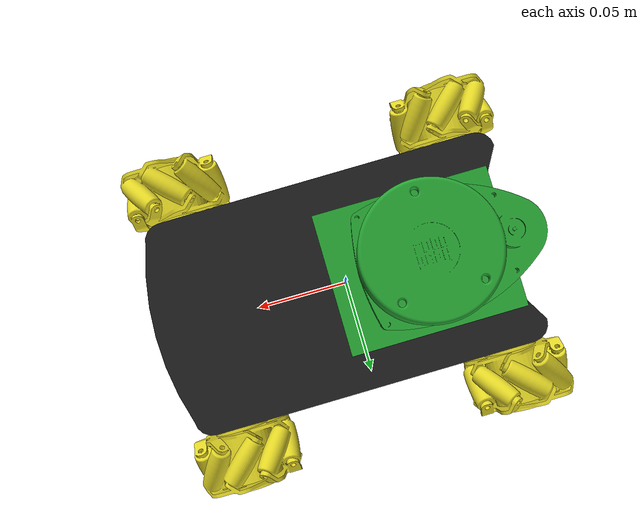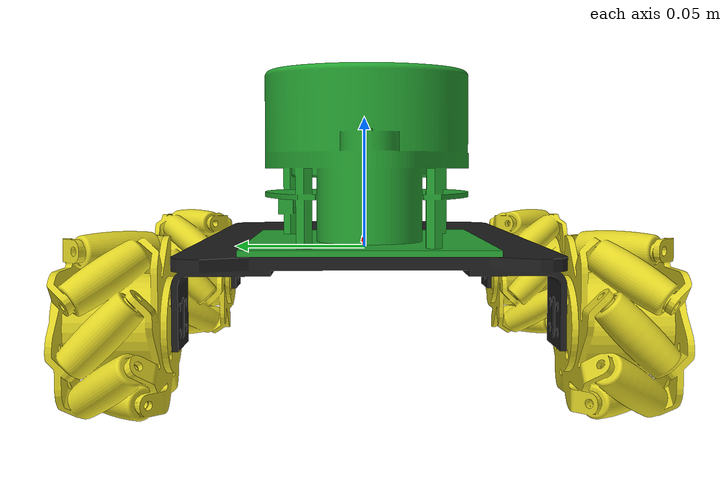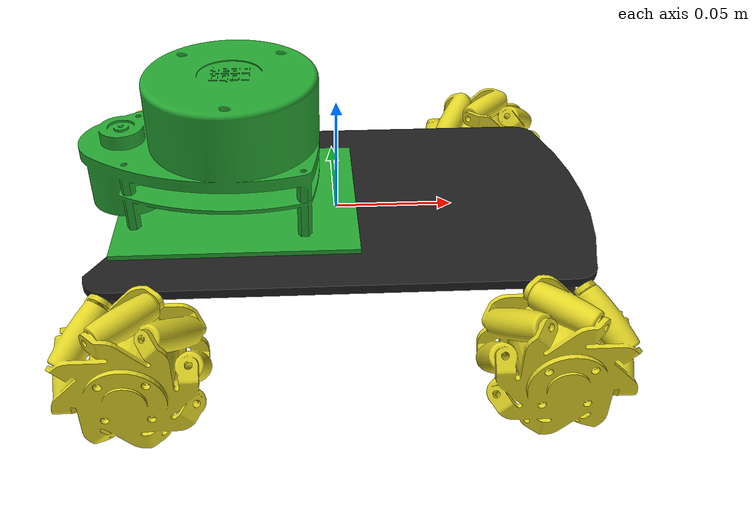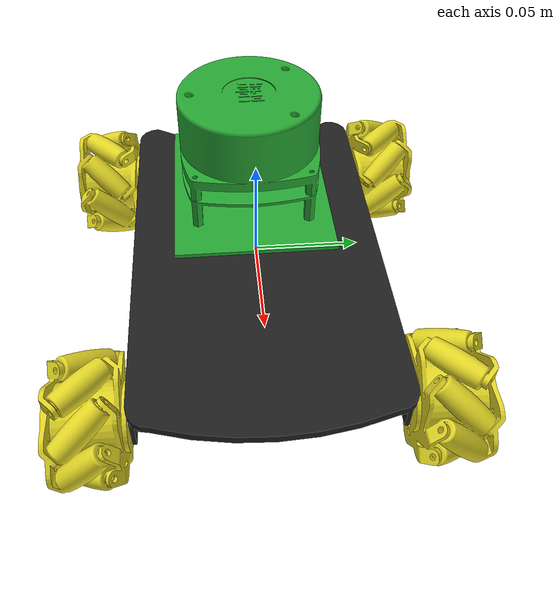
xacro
<?xml version="1.0" encoding="utf-8"?>
<robot name="omni_car" xmlns:xacro="http://www.ros.org/wiki/xacro">

  <xacro:arg name="prefix" default=""/>

  <xacro:include filename="$(find omni_car)/urdf/omni_car_description.urdf.xacro"/>
  <xacro:include filename="$(find omni_car)/gazebo/omni_car.gazebo.xacro"/>
  <xacro:include filename="$(find omni_car)/ros2_control/omni_car.ros2_control.xacro"/>

  <xacro:omni_car prefix="$(arg prefix)"/>
  <xacro:omni_car_ros2_control name="OmniCar" prefix="$(arg prefix)"/>
  <xacro:omni_car_gazebo prefix="$(arg prefix)"/>

</robot>

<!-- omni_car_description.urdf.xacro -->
<robot name="omni_car" xmlns:xacro="http://www.ros.org/wiki/xacro">

  <xacro:macro name="omni_car" params="prefix">

  <xacro:include filename="$(find omni_car)/urdf/omni_car.materials.xacro"/>
  <xacro:include filename="$(find omni_car)/urdf/wheel.urdf.xacro"/>
  <xacro:include filename="$(find omni_car)/urdf/imu.urdf.xacro"/>
  <xacro:include filename="$(find omni_car)/urdf/lidar.urdf.xacro"/>

  <link name="${prefix}base_link"/>

  <link name="${prefix}frame">
    <inertial>
      <origin xyz="0 0 0" rpy="0 0 0" />
      <mass value="200.0" />
      <inertia ixx="0.02" ixy="0.0" ixz="0.0" iyy="0.02" iyz="0.0" izz="0.02" />
    </inertial>
    <visual>
      <origin xyz="0 0 0" rpy="0 0 0" />
      <geometry>
        <mesh filename="file://$(find omni_car)/meshes/base_link.dae" />
      </geometry>
      <material name="black"/>
    </visual>
    <collision>
      <origin xyz="0 0 0" rpy="0 0 0" />
      <geometry>
        <box size="0.23 0.1 0.01"/>
      </geometry>
    </collision>
  </link>

  <joint name="${prefix}base_to_frame" type="fixed">
    <parent link="${prefix}base_link"/>
    <child link="${prefix}frame"/>
    <origin xyz="0 0 0" rpy="0 0 0"/>
  </joint>

  <xacro:property name="wheel_x_offset" value="0.08"/>
  <xacro:property name="wheel_y_offset" value="0.078"/>
  <xacro:property name="wheel_z_offset" value="-0.018"/>
  <xacro:wheel wheel_site="front_left" wheel_x_offset="${wheel_x_offset}" wheel_y_offset="${wheel_y_offset}" wheel_z_offset="${wheel_z_offset}" prefix="${prefix}"/>
  <xacro:wheel wheel_site="front_right" wheel_x_offset="${wheel_x_offset}" wheel_y_offset="${-wheel_y_offset}" wheel_z_offset="${wheel_z_offset}" prefix="${prefix}"/>
  <xacro:wheel wheel_site="rear_left" wheel_x_offset="${-wheel_x_offset}" wheel_y_offset="${wheel_y_offset}" wheel_z_offset="${wheel_z_offset}" prefix="${prefix}"/>
  <xacro:wheel wheel_site="rear_right" wheel_x_offset="${-wheel_x_offset}" wheel_y_offset="${-wheel_y_offset}" wheel_z_offset="${wheel_z_offset}" prefix="${prefix}"/>

  <xacro:imu name="imu" prefix="${prefix}">
    <origin xyz="0 0 -0.001" rpy="0 0 0"/>
  </xacro:imu>

  <xacro:lidar name="lidar" prefix="${prefix}">
    <origin xyz="-0.042 0 0.005" rpy="0 0 0"/>
  </xacro:lidar>

  </xacro:macro>
</robot>

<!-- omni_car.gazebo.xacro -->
<robot xmlns:xacro="http://ros.org/wiki/xacro">

  <xacro:macro name="omni_car_gazebo" params="prefix">

    <gazebo>
      <!-- ros2_control plugin -->
      <plugin filename="gz_ros2_control-system" name="gz_ros2_control::GazeboSimROS2ControlPlugin">
        <parameters>$(find omni_car)/config/omni_car_controllers.yaml</parameters>
      </plugin>

      <!-- Sensors plugins -->
      <plugin filename="gz-sim-sensors-system" name="gz::sim::systems::Sensors">
        <render_engine>ogre2</render_engine>
      </plugin>
      <plugin filename="gz-sim-imu-system" name="gz::sim::systems::Imu"/>

      <!-- Force plugin (solution to the problem mecanum wheels) -->
      <plugin filename="force_plugin" name="force_plugin::ForcePlugin">
        <bodyName>${prefix}base_link</bodyName>
        <cmdTopic>omni_drive_controller/cmd_vel_out</cmdTopic>
      </plugin>

      <!-- /usr/share/gz/gz-sim8/worlds/mecanum_drive.sdf -->
    </gazebo>

    <gazebo reference="${prefix}base_link">
      <material>Gazebo/Orange</material>
    </gazebo>

    <!-- Properties for wheels -->
    <xacro:property name="wheel_mu1" value="0.0"/>
    <xacro:property name="wheel_mu2" value="0.0"/>
    <xacro:property name="wheel_material" value="Gazebo/Yellow"/>

    <xacro:macro name="wheel_properties" params="wheel_name">
      <gazebo reference="${prefix}${wheel_name}">
        <mu1>${wheel_mu1}</mu1>
        <mu2>${wheel_mu2}</mu2>
        <material>${wheel_material}</material>
      </gazebo>
    </xacro:macro>

    <xacro:wheel_properties wheel_name="wheel_front_left"/>
    <xacro:wheel_properties wheel_name="wheel_front_right"/>
    <xacro:wheel_properties wheel_name="wheel_rear_left"/>
    <xacro:wheel_properties wheel_name="wheel_rear_right"/>

    <!-- _____Sensors_____ -->
    <!-- Lidar -->
    <gazebo reference="${prefix}lidar_beam_link" >
      <sensor name="lidar" type="gpu_lidar">
        <gz_frame_id>${prefix}lidar_beam_link</gz_frame_id>
        <topic>scan</topic>
        <update_rate>30</update_rate>
        <lidar>
          <scan>
            <horizontal>
              <samples>1000</samples>
              <resolution>1</resolution>
              <min_angle>-3.1414</min_angle>
              <max_angle>3.1414</max_angle>
            </horizontal>
            <vertical>
              <samples>1</samples>
              <resolution>0.1</resolution>
              <min_angle>0.0</min_angle>
              <max_angle>0.0</max_angle>
            </vertical>
          </scan>
          <range>
            <min>0.1</min>
            <max>10.0</max>
            <resolution>0.01</resolution>
          </range>
          <frame_id>${prefix}lidar_beam_link</frame_id>
        </lidar>
        <alwaysOn>ture</alwaysOn>
        <visualize>true</visualize>
      </sensor>
    </gazebo>

    <!-- IMU -->
    <gazebo reference="${prefix}imu_link" >
      <sensor name="imu" type="imu">
        <always_on>1</always_on>
        <update_rate>100</update_rate>
        <visualize>true</visualize>
        <topic>imu</topic>
        <enable_metrics>true</enable_metrics>
      </sensor>
    </gazebo>

    <!-- RGB camera -->
    <gazebo reference="${prefix}kinect_rgb_frame" >
      <sensor name="camera" type="camera">
        <camera>
          <horizontal_fov>1.047</horizontal_fov>
          <image>
            <width>320</width>
            <height>240</height>
          </image>
          <clip>
            <near>0.1</near>
            <far>100</far>
          </clip>
        </camera>
        <always_on>1</always_on>
        <update_rate>30</update_rate>
        <visualize>true</visualize>
        <topic>camera</topic>
      </sensor>
    </gazebo>

    <!-- depth camera -->
    <gazebo reference="${prefix}kinect_depth_frame" >
      <sensor name="depth_camera1" type="depth_camera">
        <update_rate>10</update_rate>
        <topic>depth_camera</topic>
        <camera>
          <horizontal_fov>1.05</horizontal_fov>
          <image>
            <width>256</width>
            <height>256</height>
            <format>R_FLOAT32</format>
          </image>
          <clip>
            <near>0.1</near>
            <far>10.0</far>
          </clip>
        </camera>
      </sensor>
    </gazebo>

  </xacro:macro>
</robot>

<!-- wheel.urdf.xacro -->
<robot xmlns:xacro="http://wiki.ros.org/xacro">
  <xacro:macro name="wheel" params="wheel_site wheel_x_offset wheel_y_offset wheel_z_offset prefix">
    <link name="${prefix}wheel_${wheel_site}">
      <inertial>
        <origin xyz="0 0 0" rpy="0 0 0" />
        <mass value="0.3" />
        <inertia ixx="0.02" ixy="0.0" ixz="0.0" iyy="0.02" iyz="0.0" izz="0.02" />
      </inertial>
      <visual>
        <origin xyz="0 0 0" rpy="${-pi/2} 0 0" />
        <geometry>
          <mesh filename="file://$(find omni_car)/meshes/wheel_${wheel_site}.dae" />
        </geometry>
        <material name="yellow"/>
      </visual>
      <collision>
        <origin xyz="0 0 0" rpy="0 0 0" />
        <geometry>
          <cylinder radius="0.03" length="0.02"/>
        </geometry>
      </collision>
    </link>

    <joint name="${prefix}wheel_${wheel_site}_joint" type="continuous">
      <parent link="${prefix}frame" />
      <child link="${prefix}wheel_${wheel_site}" />
      <axis xyz="0 0 1" />
      <origin xyz="${wheel_x_offset} ${wheel_y_offset} ${wheel_z_offset}" rpy="${-pi/2} 0 0"/>
      <limit velocity="15.0" effort="30"/>
    </joint>

    <transmission name="${prefix}${wheel_site}_trans">
      <type>transmission_interface/SimpleTransmission</type>
      <joint name="${prefix}wheel_${wheel_site}_joint">
        <hardwareInterface>VelocityJointInterface</hardwareInterface>
      </joint>
      <actuator name="${prefix}${wheel_site}_motor">
        <mechanicalReduction>1</mechanicalReduction>
      </actuator>
    </transmission>

  </xacro:macro>
</robot>

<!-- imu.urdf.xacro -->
<robot xmlns:xacro="http://wiki.ros.org/xacro">
  <xacro:property name="imu_size" value="0.002" />
  <xacro:macro name="imu" params="name prefix *origin">
    <link name="${prefix}${name}_link">
      <visual>
        <origin xyz="0 0 0" rpy="0 0 0" />
        <geometry>
          <box size="${imu_size} ${imu_size} ${imu_size}"/>
        </geometry>
        <material name="blue" />
      </visual>
    </link>
    <joint name="${prefix}${name}_joint" type="fixed">
      <xacro:insert_block name="origin" />
      <parent link="${prefix}frame"/>
      <child link="${prefix}${name}_link"/>
    </joint>
  </xacro:macro>
</robot>

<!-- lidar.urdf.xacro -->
<robot xmlns:xacro="http://wiki.ros.org/xacro">
  <xacro:property name="lidar_base_size_x" value="0.1" />
  <xacro:property name="lidar_base_size_y" value="0.08" />
  <xacro:property name="lidar_base_size_z" value="0.002" />

  <xacro:property name="beam_z" value="0.045" />
  <xacro:macro name="lidar" params="name prefix *origin">
    <link name="${prefix}${name}_base_link">
      <visual>
        <origin xyz="0 0 0" rpy="0 0 0" />
        <geometry>
          <box size="${lidar_base_size_x} ${lidar_base_size_y} ${lidar_base_size_z}"/>
        </geometry>
        <material name="green" />
      </visual>
    </link>

    <link name="${prefix}${name}_main_link">
      <visual>
        <origin xyz="0 0 0" rpy="0 0 0" />
        <geometry>
          <mesh filename="file://$(find omni_car)/meshes/rplidar.stl"/>
        </geometry>
        <material name="green"/>
      </visual>
    </link>

    <link name="${prefix}${name}_beam_link"/>

    <joint name="${prefix}${name}_base_joint" type="fixed">
      <xacro:insert_block name="origin" />
      <parent link="${prefix}frame"/>
      <child link="${prefix}${name}_base_link"/>
    </joint>

    <joint name="${prefix}${name}_main_joint" type="fixed">
      <origin xyz="0 0 ${lidar_base_size_z/2}" rpy="0 0 0" />
      <parent link="${prefix}${name}_base_link"/>
      <child link="${prefix}${name}_main_link"/>
    </joint>

    <joint name="${prefix}${name}_beam_joint" type="fixed">
      <origin xyz="0 0 ${beam_z}" rpy="0 0 0" />
      <parent link="${prefix}${name}_base_link"/>
      <child link="${prefix}${name}_beam_link"/>
    </joint>

  </xacro:macro>
</robot>
